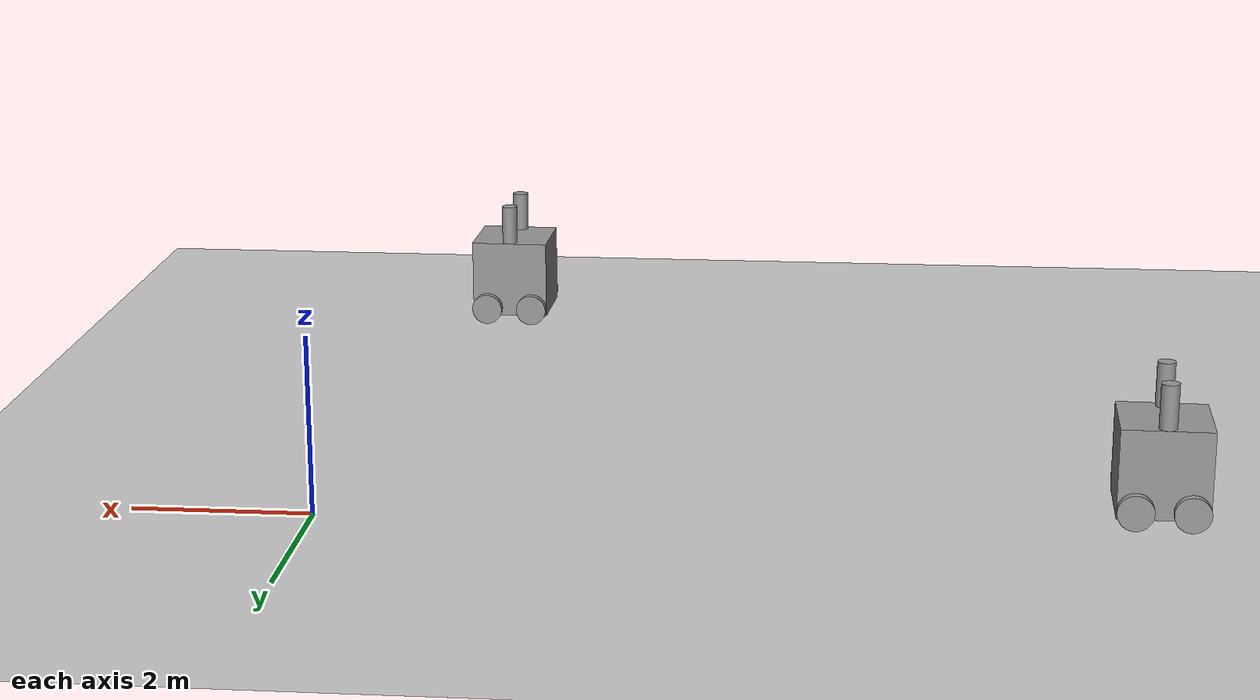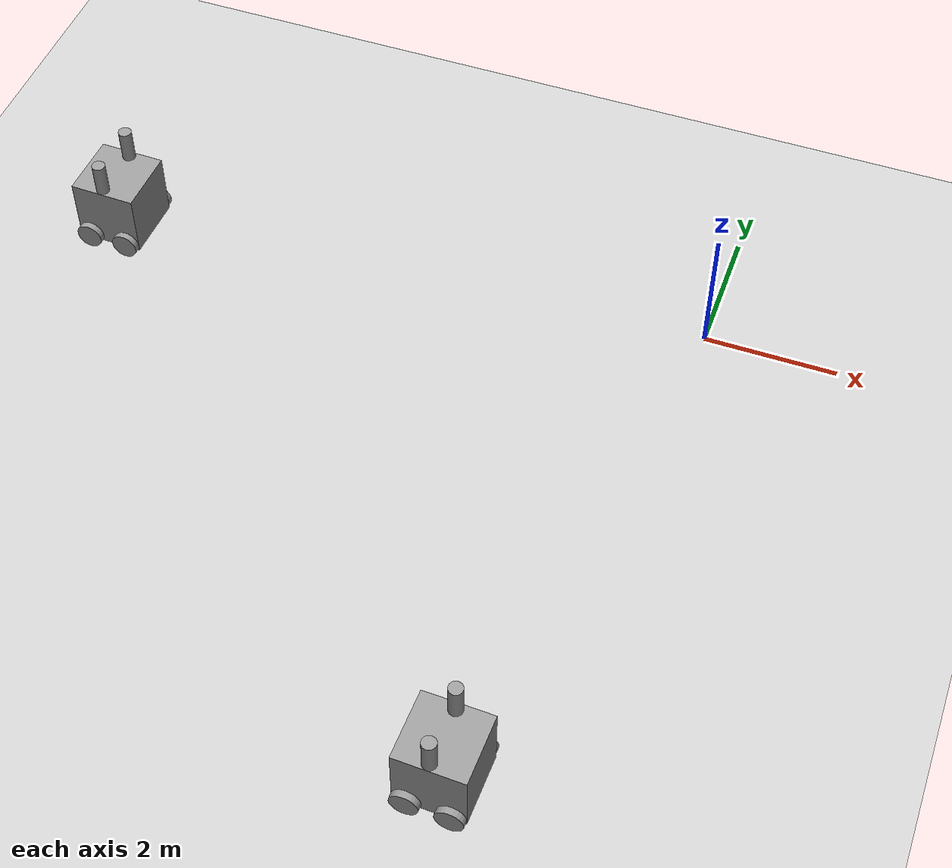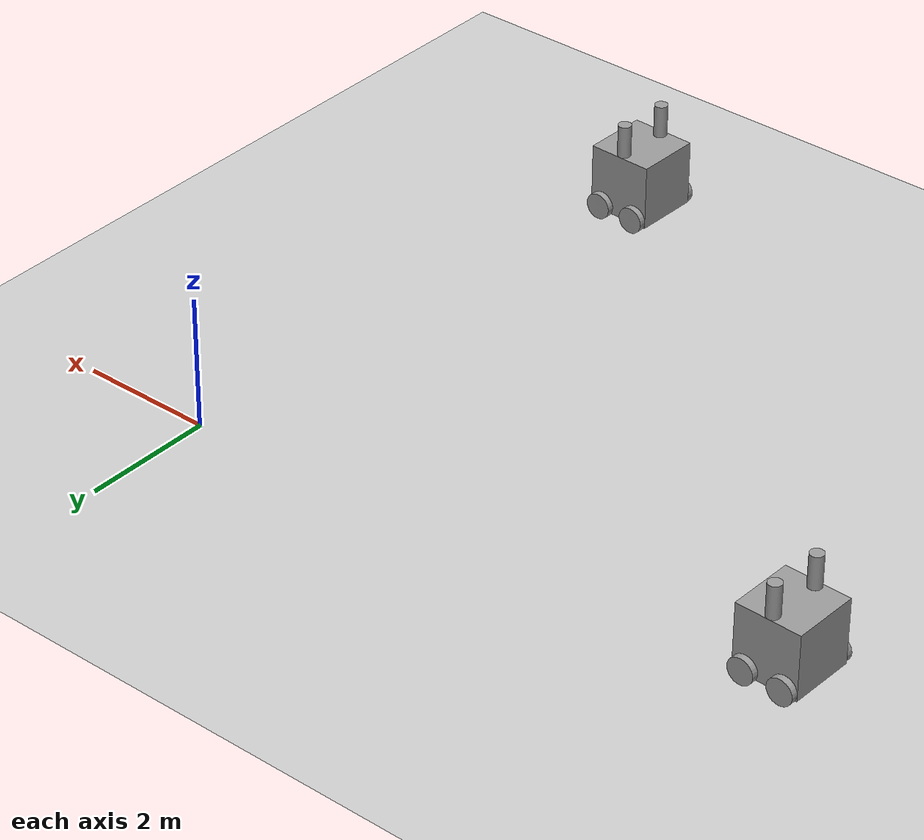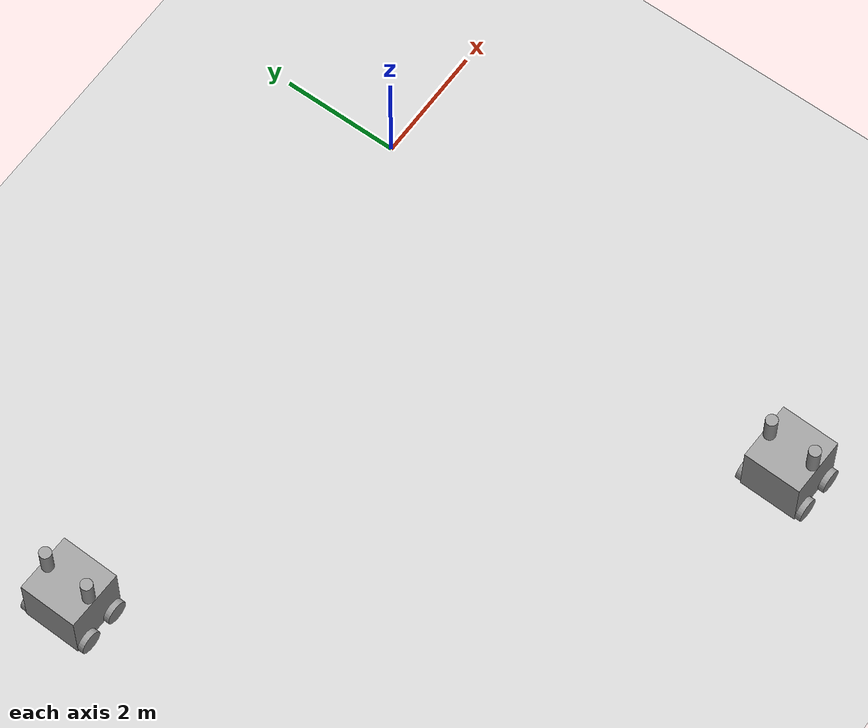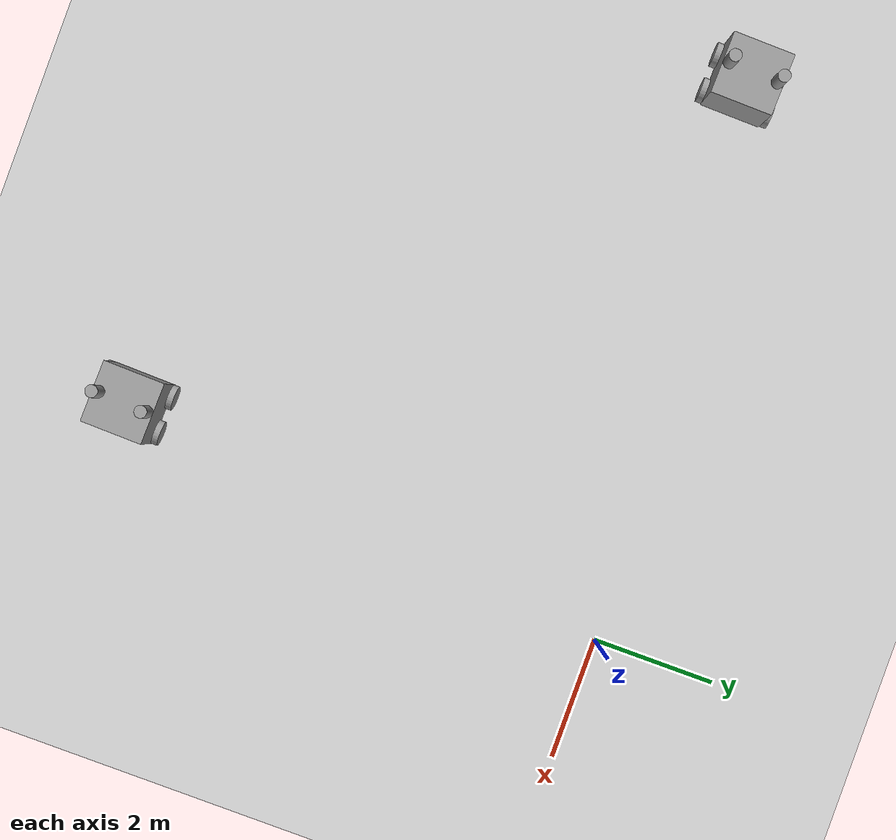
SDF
<sdf version="1.6">
 <world name="default">
  <model name="ground_plane">
   <static>1</static>
   <link name="link">
    <collision name="collision">
     <geometry><plane><normal>0 0 1</normal><size>100 100</size></plane></geometry>
     <surface><friction><ode><mu>100</mu><mu2>50</mu2></ode></friction></surface>
    </collision>
    <visual name="visual">
     <cast_shadows>0</cast_shadows>
     <geometry><plane><normal>0 0 1</normal><size>100 100</size></plane></geometry>
     <material>
      <script><uri>file://media/materials/scripts/gazebo.material</uri><name>Gazebo/Grey</name></script>
     </material>
    </visual>
   </link>
  </model>
  <model name="GyandeepsRobot_clone_0">
   <link name="link_0">
    <pose>-0.088094 0.807279 0.3325 0 -0 0</pose>
    <inertial>
     <mass>1</mass>
     <inertia>
      <ixx>0.166667</ixx>
      <ixy>0</ixy>
      <ixz>0</ixz>
      <iyy>0.166667</iyy>
      <iyz>0</iyz>
      <izz>0.166667</izz>
     </inertia>
    </inertial>
    <visual name="visual">
     <geometry><box><size>1 1 1</size></box></geometry>
     <material>
      <lighting>1</lighting>
      <script><uri>file://media/materials/scripts/gazebo.material</uri><name>Gazebo/Grey</name></script>
      <shader type="pixel"><normal_map>__default__</normal_map></shader>
      <ambient>0.3 0.3 0.3 1</ambient>
      <diffuse>0.7 0.7 0.7 1</diffuse>
      <specular>0.01 0.01 0.01 1</specular>
      <emissive>0 0 0 1</emissive>
     </material>
    </visual>
    <collision name="collision">
     <geometry><box><size>1 1 1</size></box></geometry>
     <surface>
      <friction>
       <ode><mu>1</mu><mu2>1</mu2><fdir1>0 0 0</fdir1><slip1>0</slip1><slip2>0</slip2></ode>
       <torsional>
        <coefficient>1</coefficient>
        <patch_radius>0</patch_radius>
        <surface_radius>0</surface_radius>
        <use_patch_radius>1</use_patch_radius>
        <ode><slip>0</slip></ode>
       </torsional>
      </friction>
      <bounce><restitution_coefficient>0</restitution_coefficient><threshold>1e+06</threshold></bounce>
      <contact>
       <collide_without_contact>0</collide_without_contact>
       <collide_without_contact_bitmask>1</collide_without_contact_bitmask>
       <collide_bitmask>1</collide_bitmask>
       <ode>
        <soft_cfm>0</soft_cfm>
        <soft_erp>0.2</soft_erp>
        <kp>1e+13</kp>
        <kd>1</kd>
        <max_vel>0.01</max_vel>
        <min_depth>0</min_depth>
       </ode>
       <bullet>
        <split_impulse>1</split_impulse>
        <split_impulse_penetration_threshold>-0.01</split_impulse_penetration_threshold>
        <soft_cfm>0</soft_cfm>
        <soft_erp>0.2</soft_erp>
        <kp>1e+13</kp>
        <kd>1</kd>
       </bullet>
      </contact>
     </surface>
    </collision>
   </link>
   <link name="link_1">
    <pose>-0.388094 0.257278 -0.0675 1.5708 -0 0</pose>
    <inertial>
     <mass>1</mass>
     <inertia><ixx>0.145833</ixx><ixy>0</ixy><ixz>0</ixz><iyy>0.145833</iyy><iyz>0</iyz><izz>0.125</izz></inertia>
    </inertial>
    <visual name="visual">
     <geometry><cylinder><radius>0.2</radius><length>0.1</length></cylinder></geometry>
     <material>
      <lighting>1</lighting>
      <script><uri>file://media/materials/scripts/gazebo.material</uri><name>Gazebo/Grey</name></script>
      <shader type="pixel"><normal_map>__default__</normal_map></shader>
      <ambient>0.3 0.3 0.3 1</ambient>
      <diffuse>0.7 0.7 0.7 1</diffuse>
      <specular>0.01 0.01 0.01 1</specular>
      <emissive>0 0 0 1</emissive>
     </material>
    </visual>
    <collision name="collision">
     <geometry><cylinder><radius>0.2</radius><length>0.1</length></cylinder></geometry>
     <surface>
      <friction>
       <ode><mu>1</mu><mu2>1</mu2><fdir1>0 0 0</fdir1><slip1>0</slip1><slip2>0</slip2></ode>
       <torsional>
        <coefficient>1</coefficient>
        <patch_radius>0</patch_radius>
        <surface_radius>0</surface_radius>
        <use_patch_radius>1</use_patch_radius>
        <ode><slip>0</slip></ode>
       </torsional>
      </friction>
      <bounce><restitution_coefficient>0</restitution_coefficient><threshold>1e+06</threshold></bounce>
      <contact>
       <collide_without_contact>0</collide_without_contact>
       <collide_without_contact_bitmask>1</collide_without_contact_bitmask>
       <collide_bitmask>1</collide_bitmask>
       <ode>
        <soft_cfm>0</soft_cfm>
        <soft_erp>0.2</soft_erp>
        <kp>1e+13</kp>
        <kd>1</kd>
        <max_vel>0.01</max_vel>
        <min_depth>0</min_depth>
       </ode>
       <bullet>
        <split_impulse>1</split_impulse>
        <split_impulse_penetration_threshold>-0.01</split_impulse_penetration_threshold>
        <soft_cfm>0</soft_cfm>
        <soft_erp>0.2</soft_erp>
        <kp>1e+13</kp>
        <kd>1</kd>
       </bullet>
      </contact>
     </surface>
    </collision>
   </link>
   <link name="link_1_clone">
    <pose>0.211906 0.257278 -0.0675 1.5708 -0 0</pose>
    <inertial>
     <mass>1</mass>
     <inertia><ixx>0.145833</ixx><ixy>0</ixy><ixz>0</ixz><iyy>0.145833</iyy><iyz>0</iyz><izz>0.125</izz></inertia>
    </inertial>
    <visual name="visual">
     <geometry><cylinder><radius>0.2</radius><length>0.1</length></cylinder></geometry>
     <material>
      <lighting>1</lighting>
      <script><uri>file://media/materials/scripts/gazebo.material</uri><name>Gazebo/Grey</name></script>
      <shader type="pixel"><normal_map>__default__</normal_map></shader>
      <ambient>0.3 0.3 0.3 1</ambient>
      <diffuse>0.7 0.7 0.7 1</diffuse>
      <specular>0.01 0.01 0.01 1</specular>
      <emissive>0 0 0 1</emissive>
     </material>
    </visual>
    <collision name="collision">
     <geometry><cylinder><radius>0.2</radius><length>0.1</length></cylinder></geometry>
     <surface>
      <friction>
       <ode><mu>1</mu><mu2>1</mu2><fdir1>0 0 0</fdir1><slip1>0</slip1><slip2>0</slip2></ode>
       <torsional>
        <coefficient>1</coefficient>
        <patch_radius>0</patch_radius>
        <surface_radius>0</surface_radius>
        <use_patch_radius>1</use_patch_radius>
        <ode><slip>0</slip></ode>
       </torsional>
      </friction>
      <bounce><restitution_coefficient>0</restitution_coefficient><threshold>1e+06</threshold></bounce>
      <contact>
       <collide_without_contact>0</collide_without_contact>
       <collide_without_contact_bitmask>1</collide_without_contact_bitmask>
       <collide_bitmask>1</collide_bitmask>
       <ode>
        <soft_cfm>0</soft_cfm>
        <soft_erp>0.2</soft_erp>
        <kp>1e+13</kp>
        <kd>1</kd>
        <max_vel>0.01</max_vel>
        <min_depth>0</min_depth>
       </ode>
       <bullet>
        <split_impulse>1</split_impulse>
        <split_impulse_penetration_threshold>-0.01</split_impulse_penetration_threshold>
        <soft_cfm>0</soft_cfm>
        <soft_erp>0.2</soft_erp>
        <kp>1e+13</kp>
        <kd>1</kd>
       </bullet>
      </contact>
     </surface>
    </collision>
   </link>
   <link name="link_1_clone_0">
    <pose>-0.388094 1.35728 -0.0675 1.5708 -0 0</pose>
    <inertial>
     <mass>1</mass>
     <inertia><ixx>0.145833</ixx><ixy>0</ixy><ixz>0</ixz><iyy>0.145833</iyy><iyz>0</iyz><izz>0.125</izz></inertia>
    </inertial>
    <visual name="visual">
     <geometry><cylinder><radius>0.2</radius><length>0.1</length></cylinder></geometry>
     <material>
      <lighting>1</lighting>
      <script><uri>file://media/materials/scripts/gazebo.material</uri><name>Gazebo/Grey</name></script>
      <shader type="pixel"><normal_map>__default__</normal_map></shader>
      <ambient>0.3 0.3 0.3 1</ambient>
      <diffuse>0.7 0.7 0.7 1</diffuse>
      <specular>0.01 0.01 0.01 1</specular>
      <emissive>0 0 0 1</emissive>
     </material>
    </visual>
    <collision name="collision">
     <geometry><cylinder><radius>0.2</radius><length>0.1</length></cylinder></geometry>
     <surface>
      <friction>
       <ode><mu>1</mu><mu2>1</mu2><fdir1>0 0 0</fdir1><slip1>0</slip1><slip2>0</slip2></ode>
       <torsional>
        <coefficient>1</coefficient>
        <patch_radius>0</patch_radius>
        <surface_radius>0</surface_radius>
        <use_patch_radius>1</use_patch_radius>
        <ode><slip>0</slip></ode>
       </torsional>
      </friction>
      <bounce><restitution_coefficient>0</restitution_coefficient><threshold>1e+06</threshold></bounce>
      <contact>
       <collide_without_contact>0</collide_without_contact>
       <collide_without_contact_bitmask>1</collide_without_contact_bitmask>
       <collide_bitmask>1</collide_bitmask>
       <ode>
        <soft_cfm>0</soft_cfm>
        <soft_erp>0.2</soft_erp>
        <kp>1e+13</kp>
        <kd>1</kd>
        <max_vel>0.01</max_vel>
        <min_depth>0</min_depth>
       </ode>
       <bullet>
        <split_impulse>1</split_impulse>
        <split_impulse_penetration_threshold>-0.01</split_impulse_penetration_threshold>
        <soft_cfm>0</soft_cfm>
        <soft_erp>0.2</soft_erp>
        <kp>1e+13</kp>
        <kd>1</kd>
       </bullet>
      </contact>
     </surface>
    </collision>
   </link>
   <link name="link_1_clone_1">
    <pose>0.211906 1.35728 -0.0675 1.5708 -0 0</pose>
    <inertial>
     <mass>1</mass>
     <inertia><ixx>0.145833</ixx><ixy>0</ixy><ixz>0</ixz><iyy>0.145833</iyy><iyz>0</iyz><izz>0.125</izz></inertia>
    </inertial>
    <visual name="visual">
     <geometry><cylinder><radius>0.2</radius><length>0.1</length></cylinder></geometry>
     <material>
      <lighting>1</lighting>
      <script><uri>file://media/materials/scripts/gazebo.material</uri><name>Gazebo/Grey</name></script>
      <shader type="pixel"><normal_map>__default__</normal_map></shader>
      <ambient>0.3 0.3 0.3 1</ambient>
      <diffuse>0.7 0.7 0.7 1</diffuse>
      <specular>0.01 0.01 0.01 1</specular>
      <emissive>0 0 0 1</emissive>
     </material>
    </visual>
    <collision name="collision">
     <geometry><cylinder><radius>0.2</radius><length>0.1</length></cylinder></geometry>
     <surface>
      <friction>
       <ode><mu>1</mu><mu2>1</mu2><fdir1>0 0 0</fdir1><slip1>0</slip1><slip2>0</slip2></ode>
       <torsional>
        <coefficient>1</coefficient>
        <patch_radius>0</patch_radius>
        <surface_radius>0</surface_radius>
        <use_patch_radius>1</use_patch_radius>
        <ode><slip>0</slip></ode>
       </torsional>
      </friction>
      <bounce><restitution_coefficient>0</restitution_coefficient><threshold>1e+06</threshold></bounce>
      <contact>
       <collide_without_contact>0</collide_without_contact>
       <collide_without_contact_bitmask>1</collide_without_contact_bitmask>
       <collide_bitmask>1</collide_bitmask>
       <ode>
        <soft_cfm>0</soft_cfm>
        <soft_erp>0.2</soft_erp>
        <kp>1e+13</kp>
        <kd>1</kd>
        <max_vel>0.01</max_vel>
        <min_depth>0</min_depth>
       </ode>
       <bullet>
        <split_impulse>1</split_impulse>
        <split_impulse_penetration_threshold>-0.01</split_impulse_penetration_threshold>
        <soft_cfm>0</soft_cfm>
        <soft_erp>0.2</soft_erp>
        <kp>1e+13</kp>
        <kd>1</kd>
       </bullet>
      </contact>
     </surface>
    </collision>
   </link>
   <link name="link_4">
    <pose>-0.108094 0.407279 1.0825 0 -0 0</pose>
    <inertial>
     <mass>1</mass>
     <inertia><ixx>0.145833</ixx><ixy>0</ixy><ixz>0</ixz><iyy>0.145833</iyy><iyz>0</iyz><izz>0.125</izz></inertia>
    </inertial>
    <visual name="visual">
     <geometry><cylinder><radius>0.1</radius><length>0.5</length></cylinder></geometry>
     <material>
      <lighting>1</lighting>
      <script><uri>file://media/materials/scripts/gazebo.material</uri><name>Gazebo/Grey</name></script>
      <shader type="pixel"><normal_map>__default__</normal_map></shader>
      <ambient>0.3 0.3 0.3 1</ambient>
      <diffuse>0.7 0.7 0.7 1</diffuse>
      <specular>0.01 0.01 0.01 1</specular>
      <emissive>0 0 0 1</emissive>
     </material>
    </visual>
    <collision name="collision">
     <geometry><cylinder><radius>0.1</radius><length>0.5</length></cylinder></geometry>
     <surface>
      <friction>
       <ode><mu>1</mu><mu2>1</mu2><fdir1>0 0 0</fdir1><slip1>0</slip1><slip2>0</slip2></ode>
       <torsional>
        <coefficient>1</coefficient>
        <patch_radius>0</patch_radius>
        <surface_radius>0</surface_radius>
        <use_patch_radius>1</use_patch_radius>
        <ode><slip>0</slip></ode>
       </torsional>
      </friction>
      <bounce><restitution_coefficient>0</restitution_coefficient><threshold>1e+06</threshold></bounce>
      <contact>
       <collide_without_contact>0</collide_without_contact>
       <collide_without_contact_bitmask>1</collide_without_contact_bitmask>
       <collide_bitmask>1</collide_bitmask>
       <ode>
        <soft_cfm>0</soft_cfm>
        <soft_erp>0.2</soft_erp>
        <kp>1e+13</kp>
        <kd>1</kd>
        <max_vel>0.01</max_vel>
        <min_depth>0</min_depth>
       </ode>
       <bullet>
        <split_impulse>1</split_impulse>
        <split_impulse_penetration_threshold>-0.01</split_impulse_penetration_threshold>
        <soft_cfm>0</soft_cfm>
        <soft_erp>0.2</soft_erp>
        <kp>1e+13</kp>
        <kd>1</kd>
       </bullet>
      </contact>
     </surface>
    </collision>
   </link>
   <link name="link_4_clone">
    <pose>-0.088094 1.20728 1.0825 0 -0 0</pose>
    <inertial>
     <mass>1</mass>
     <inertia><ixx>0.145833</ixx><ixy>0</ixy><ixz>0</ixz><iyy>0.145833</iyy><iyz>0</iyz><izz>0.125</izz></inertia>
    </inertial>
    <visual name="visual">
     <geometry><cylinder><radius>0.1</radius><length>0.5</length></cylinder></geometry>
     <material>
      <lighting>1</lighting>
      <script><uri>file://media/materials/scripts/gazebo.material</uri><name>Gazebo/Grey</name></script>
      <shader type="pixel"><normal_map>__default__</normal_map></shader>
      <ambient>0.3 0.3 0.3 1</ambient>
      <diffuse>0.7 0.7 0.7 1</diffuse>
      <specular>0.01 0.01 0.01 1</specular>
      <emissive>0 0 0 1</emissive>
     </material>
    </visual>
    <collision name="collision">
     <geometry><cylinder><radius>0.1</radius><length>0.5</length></cylinder></geometry>
     <surface>
      <friction>
       <ode><mu>1</mu><mu2>1</mu2><fdir1>0 0 0</fdir1><slip1>0</slip1><slip2>0</slip2></ode>
       <torsional>
        <coefficient>1</coefficient>
        <patch_radius>0</patch_radius>
        <surface_radius>0</surface_radius>
        <use_patch_radius>1</use_patch_radius>
        <ode><slip>0</slip></ode>
       </torsional>
      </friction>
      <bounce><restitution_coefficient>0</restitution_coefficient><threshold>1e+06</threshold></bounce>
      <contact>
       <collide_without_contact>0</collide_without_contact>
       <collide_without_contact_bitmask>1</collide_without_contact_bitmask>
       <collide_bitmask>1</collide_bitmask>
       <ode>
        <soft_cfm>0</soft_cfm>
        <soft_erp>0.2</soft_erp>
        <kp>1e+13</kp>
        <kd>1</kd>
        <max_vel>0.01</max_vel>
        <min_depth>0</min_depth>
       </ode>
       <bullet>
        <split_impulse>1</split_impulse>
        <split_impulse_penetration_threshold>-0.01</split_impulse_penetration_threshold>
        <soft_cfm>0</soft_cfm>
        <soft_erp>0.2</soft_erp>
        <kp>1e+13</kp>
        <kd>1</kd>
       </bullet>
      </contact>
     </surface>
    </collision>
   </link>
   <joint name="link_0_JOINT_0" type="revolute">
    <parent>link_0</parent>
    <child>link_1</child>
    <axis>
     <xyz>0 0 1</xyz>
     <use_parent_model_frame>0</use_parent_model_frame>
     <limit>
      <lower>-1.79769e+308</lower>
      <upper>1.79769e+308</upper>
      <effort>-1</effort>
      <velocity>-1</velocity>
     </limit>
     <dynamics>
      <spring_reference>0</spring_reference>
      <spring_stiffness>0</spring_stiffness>
      <damping>0</damping>
      <friction>0</friction>
     </dynamics>
    </axis>
    <physics>
     <ode><limit><cfm>0</cfm><erp>0.2</erp></limit><suspension><cfm>0</cfm><erp>0.2</erp></suspension></ode>
    </physics>
   </joint>
   <joint name="link_0_JOINT_1" type="revolute">
    <parent>link_0</parent>
    <child>link_1_clone</child>
    <axis>
     <xyz>0 0 1</xyz>
     <use_parent_model_frame>0</use_parent_model_frame>
     <limit>
      <lower>-1.79769e+308</lower>
      <upper>1.79769e+308</upper>
      <effort>-1</effort>
      <velocity>-1</velocity>
     </limit>
     <dynamics>
      <spring_reference>0</spring_reference>
      <spring_stiffness>0</spring_stiffness>
      <damping>0</damping>
      <friction>0</friction>
     </dynamics>
    </axis>
    <physics>
     <ode><limit><cfm>0</cfm><erp>0.2</erp></limit><suspension><cfm>0</cfm><erp>0.2</erp></suspension></ode>
    </physics>
   </joint>
   <joint name="link_0_JOINT_2" type="revolute">
    <parent>link_0</parent>
    <child>link_1_clone_0</child>
    <axis>
     <xyz>0 0 1</xyz>
     <use_parent_model_frame>0</use_parent_model_frame>
     <limit>
      <lower>-1.79769e+308</lower>
      <upper>1.79769e+308</upper>
      <effort>-1</effort>
      <velocity>-1</velocity>
     </limit>
     <dynamics>
      <spring_reference>0</spring_reference>
      <spring_stiffness>0</spring_stiffness>
      <damping>0</damping>
      <friction>0</friction>
     </dynamics>
    </axis>
    <physics>
     <ode><limit><cfm>0</cfm><erp>0.2</erp></limit><suspension><cfm>0</cfm><erp>0.2</erp></suspension></ode>
    </physics>
   </joint>
   <joint name="link_0_JOINT_3" type="revolute">
    <parent>link_0</parent>
    <child>link_1_clone_1</child>
    <axis>
     <xyz>0 0 1</xyz>
     <use_parent_model_frame>0</use_parent_model_frame>
     <limit>
      <lower>-1.79769e+308</lower>
      <upper>1.79769e+308</upper>
      <effort>-1</effort>
      <velocity>-1</velocity>
     </limit>
     <dynamics>
      <spring_reference>0</spring_reference>
      <spring_stiffness>0</spring_stiffness>
      <damping>0</damping>
     </dynamics>
    </axis>
    <physics>
     <ode><limit><cfm>0</cfm><erp>0.2</erp></limit><suspension><cfm>0</cfm><erp>0.2</erp></suspension></ode>
    </physics>
   </joint>
   <joint name="link_0_JOINT_4" type="prismatic">
    <parent>link_0</parent>
    <child>link_4</child>
    <axis>
     <xyz>0 0 1</xyz>
     <use_parent_model_frame>0</use_parent_model_frame>
     <limit>
      <lower>-1.79769e+308</lower>
      <upper>1.79769e+308</upper>
      <effort>-1</effort>
      <velocity>-1</velocity>
     </limit>
     <dynamics>
      <spring_reference>0</spring_reference>
      <spring_stiffness>0</spring_stiffness>
      <damping>0</damping>
     </dynamics>
    </axis>
    <physics>
     <ode><limit><cfm>0</cfm><erp>0.2</erp></limit><suspension><cfm>0</cfm><erp>0.2</erp></suspension></ode>
    </physics>
   </joint>
   <joint name="link_0_JOINT_5" type="prismatic">
    <parent>link_0</parent>
    <child>link_4_clone</child>
    <axis>
     <xyz>0 0 1</xyz>
     <use_parent_model_frame>0</use_parent_model_frame>
     <limit>
      <lower>-1.79769e+308</lower>
      <upper>1.79769e+308</upper>
      <effort>-1</effort>
      <velocity>-1</velocity>
     </limit>
     <dynamics>
      <spring_reference>0</spring_reference>
      <spring_stiffness>0</spring_stiffness>
      <damping>0</damping>
     </dynamics>
    </axis>
    <physics>
     <ode><limit><cfm>0</cfm><erp>0.2</erp></limit><suspension><cfm>0</cfm><erp>0.2</erp></suspension></ode>
    </physics>
   </joint>
   <static>0</static>
   <pose>-9.04283 -1.62933 0.267498 2e-06 0 -0.025498</pose>
  </model>
  <model name="GyandeepsRobot_clone_0_clone">
   <link name="link_0">
    <pose>-0.088094 0.807279 0.3325 0 -0 0</pose>
    <inertial>
     <mass>1</mass>
     <inertia>
      <ixx>0.166667</ixx>
      <ixy>0</ixy>
      <ixz>0</ixz>
      <iyy>0.166667</iyy>
      <iyz>0</iyz>
      <izz>0.166667</izz>
     </inertia>
    </inertial>
    <visual name="visual">
     <geometry><box><size>1 1 1</size></box></geometry>
     <material>
      <lighting>1</lighting>
      <script><uri>file://media/materials/scripts/gazebo.material</uri><name>Gazebo/Grey</name></script>
      <shader type="pixel"><normal_map>__default__</normal_map></shader>
      <ambient>0.3 0.3 0.3 1</ambient>
      <diffuse>0.7 0.7 0.7 1</diffuse>
      <specular>0.01 0.01 0.01 1</specular>
      <emissive>0 0 0 1</emissive>
     </material>
    </visual>
    <collision name="collision">
     <geometry><box><size>1 1 1</size></box></geometry>
     <surface>
      <friction>
       <ode><mu>1</mu><mu2>1</mu2><fdir1>0 0 0</fdir1><slip1>0</slip1><slip2>0</slip2></ode>
       <torsional>
        <coefficient>1</coefficient>
        <patch_radius>0</patch_radius>
        <surface_radius>0</surface_radius>
        <use_patch_radius>1</use_patch_radius>
        <ode><slip>0</slip></ode>
       </torsional>
      </friction>
      <bounce><restitution_coefficient>0</restitution_coefficient><threshold>1e+06</threshold></bounce>
      <contact>
       <collide_without_contact>0</collide_without_contact>
       <collide_without_contact_bitmask>1</collide_without_contact_bitmask>
       <collide_bitmask>1</collide_bitmask>
       <ode>
        <soft_cfm>0</soft_cfm>
        <soft_erp>0.2</soft_erp>
        <kp>1e+13</kp>
        <kd>1</kd>
        <max_vel>0.01</max_vel>
        <min_depth>0</min_depth>
       </ode>
       <bullet>
        <split_impulse>1</split_impulse>
        <split_impulse_penetration_threshold>-0.01</split_impulse_penetration_threshold>
        <soft_cfm>0</soft_cfm>
        <soft_erp>0.2</soft_erp>
        <kp>1e+13</kp>
        <kd>1</kd>
       </bullet>
      </contact>
     </surface>
    </collision>
   </link>
   <link name="link_1">
    <pose>-0.388094 0.257278 -0.0675 1.5708 -0 0</pose>
    <inertial>
     <mass>1</mass>
     <inertia><ixx>0.145833</ixx><ixy>0</ixy><ixz>0</ixz><iyy>0.145833</iyy><iyz>0</iyz><izz>0.125</izz></inertia>
    </inertial>
    <visual name="visual">
     <geometry><cylinder><radius>0.2</radius><length>0.1</length></cylinder></geometry>
     <material>
      <lighting>1</lighting>
      <script><uri>file://media/materials/scripts/gazebo.material</uri><name>Gazebo/Grey</name></script>
      <shader type="pixel"><normal_map>__default__</normal_map></shader>
      <ambient>0.3 0.3 0.3 1</ambient>
      <diffuse>0.7 0.7 0.7 1</diffuse>
      <specular>0.01 0.01 0.01 1</specular>
      <emissive>0 0 0 1</emissive>
     </material>
    </visual>
    <collision name="collision">
     <geometry><cylinder><radius>0.2</radius><length>0.1</length></cylinder></geometry>
     <surface>
      <friction>
       <ode><mu>1</mu><mu2>1</mu2><fdir1>0 0 0</fdir1><slip1>0</slip1><slip2>0</slip2></ode>
       <torsional>
        <coefficient>1</coefficient>
        <patch_radius>0</patch_radius>
        <surface_radius>0</surface_radius>
        <use_patch_radius>1</use_patch_radius>
        <ode><slip>0</slip></ode>
       </torsional>
      </friction>
      <bounce><restitution_coefficient>0</restitution_coefficient><threshold>1e+06</threshold></bounce>
      <contact>
       <collide_without_contact>0</collide_without_contact>
       <collide_without_contact_bitmask>1</collide_without_contact_bitmask>
       <collide_bitmask>1</collide_bitmask>
       <ode>
        <soft_cfm>0</soft_cfm>
        <soft_erp>0.2</soft_erp>
        <kp>1e+13</kp>
        <kd>1</kd>
        <max_vel>0.01</max_vel>
        <min_depth>0</min_depth>
       </ode>
       <bullet>
        <split_impulse>1</split_impulse>
        <split_impulse_penetration_threshold>-0.01</split_impulse_penetration_threshold>
        <soft_cfm>0</soft_cfm>
        <soft_erp>0.2</soft_erp>
        <kp>1e+13</kp>
        <kd>1</kd>
       </bullet>
      </contact>
     </surface>
    </collision>
   </link>
   <link name="link_1_clone">
    <pose>0.211906 0.257278 -0.0675 1.5708 -0 0</pose>
    <inertial>
     <mass>1</mass>
     <inertia><ixx>0.145833</ixx><ixy>0</ixy><ixz>0</ixz><iyy>0.145833</iyy><iyz>0</iyz><izz>0.125</izz></inertia>
    </inertial>
    <visual name="visual">
     <geometry><cylinder><radius>0.2</radius><length>0.1</length></cylinder></geometry>
     <material>
      <lighting>1</lighting>
      <script><uri>file://media/materials/scripts/gazebo.material</uri><name>Gazebo/Grey</name></script>
      <shader type="pixel"><normal_map>__default__</normal_map></shader>
      <ambient>0.3 0.3 0.3 1</ambient>
      <diffuse>0.7 0.7 0.7 1</diffuse>
      <specular>0.01 0.01 0.01 1</specular>
      <emissive>0 0 0 1</emissive>
     </material>
    </visual>
    <collision name="collision">
     <geometry><cylinder><radius>0.2</radius><length>0.1</length></cylinder></geometry>
     <surface>
      <friction>
       <ode><mu>1</mu><mu2>1</mu2><fdir1>0 0 0</fdir1><slip1>0</slip1><slip2>0</slip2></ode>
       <torsional>
        <coefficient>1</coefficient>
        <patch_radius>0</patch_radius>
        <surface_radius>0</surface_radius>
        <use_patch_radius>1</use_patch_radius>
        <ode><slip>0</slip></ode>
       </torsional>
      </friction>
      <bounce><restitution_coefficient>0</restitution_coefficient><threshold>1e+06</threshold></bounce>
      <contact>
       <collide_without_contact>0</collide_without_contact>
       <collide_without_contact_bitmask>1</collide_without_contact_bitmask>
       <collide_bitmask>1</collide_bitmask>
       <ode>
        <soft_cfm>0</soft_cfm>
        <soft_erp>0.2</soft_erp>
        <kp>1e+13</kp>
        <kd>1</kd>
        <max_vel>0.01</max_vel>
        <min_depth>0</min_depth>
       </ode>
       <bullet>
        <split_impulse>1</split_impulse>
        <split_impulse_penetration_threshold>-0.01</split_impulse_penetration_threshold>
        <soft_cfm>0</soft_cfm>
        <soft_erp>0.2</soft_erp>
        <kp>1e+13</kp>
        <kd>1</kd>
       </bullet>
      </contact>
     </surface>
    </collision>
   </link>
   <link name="link_1_clone_0">
    <pose>-0.388094 1.35728 -0.0675 1.5708 -0 0</pose>
    <inertial>
     <mass>1</mass>
     <inertia><ixx>0.145833</ixx><ixy>0</ixy><ixz>0</ixz><iyy>0.145833</iyy><iyz>0</iyz><izz>0.125</izz></inertia>
    </inertial>
    <visual name="visual">
     <geometry><cylinder><radius>0.2</radius><length>0.1</length></cylinder></geometry>
     <material>
      <lighting>1</lighting>
      <script><uri>file://media/materials/scripts/gazebo.material</uri><name>Gazebo/Grey</name></script>
      <shader type="pixel"><normal_map>__default__</normal_map></shader>
      <ambient>0.3 0.3 0.3 1</ambient>
      <diffuse>0.7 0.7 0.7 1</diffuse>
      <specular>0.01 0.01 0.01 1</specular>
      <emissive>0 0 0 1</emissive>
     </material>
    </visual>
    <collision name="collision">
     <geometry><cylinder><radius>0.2</radius><length>0.1</length></cylinder></geometry>
     <surface>
      <friction>
       <ode><mu>1</mu><mu2>1</mu2><fdir1>0 0 0</fdir1><slip1>0</slip1><slip2>0</slip2></ode>
       <torsional>
        <coefficient>1</coefficient>
        <patch_radius>0</patch_radius>
        <surface_radius>0</surface_radius>
        <use_patch_radius>1</use_patch_radius>
        <ode><slip>0</slip></ode>
       </torsional>
      </friction>
      <bounce><restitution_coefficient>0</restitution_coefficient><threshold>1e+06</threshold></bounce>
      <contact>
       <collide_without_contact>0</collide_without_contact>
       <collide_without_contact_bitmask>1</collide_without_contact_bitmask>
       <collide_bitmask>1</collide_bitmask>
       <ode>
        <soft_cfm>0</soft_cfm>
        <soft_erp>0.2</soft_erp>
        <kp>1e+13</kp>
        <kd>1</kd>
        <max_vel>0.01</max_vel>
        <min_depth>0</min_depth>
       </ode>
       <bullet>
        <split_impulse>1</split_impulse>
        <split_impulse_penetration_threshold>-0.01</split_impulse_penetration_threshold>
        <soft_cfm>0</soft_cfm>
        <soft_erp>0.2</soft_erp>
        <kp>1e+13</kp>
        <kd>1</kd>
       </bullet>
      </contact>
     </surface>
    </collision>
   </link>
   <link name="link_1_clone_1">
    <pose>0.211906 1.35728 -0.0675 1.5708 -0 0</pose>
    <inertial>
     <mass>1</mass>
     <inertia><ixx>0.145833</ixx><ixy>0</ixy><ixz>0</ixz><iyy>0.145833</iyy><iyz>0</iyz><izz>0.125</izz></inertia>
    </inertial>
    <visual name="visual">
     <geometry><cylinder><radius>0.2</radius><length>0.1</length></cylinder></geometry>
     <material>
      <lighting>1</lighting>
      <script><uri>file://media/materials/scripts/gazebo.material</uri><name>Gazebo/Grey</name></script>
      <shader type="pixel"><normal_map>__default__</normal_map></shader>
      <ambient>0.3 0.3 0.3 1</ambient>
      <diffuse>0.7 0.7 0.7 1</diffuse>
      <specular>0.01 0.01 0.01 1</specular>
      <emissive>0 0 0 1</emissive>
     </material>
    </visual>
    <collision name="collision">
     <geometry><cylinder><radius>0.2</radius><length>0.1</length></cylinder></geometry>
     <surface>
      <friction>
       <ode><mu>1</mu><mu2>1</mu2><fdir1>0 0 0</fdir1><slip1>0</slip1><slip2>0</slip2></ode>
       <torsional>
        <coefficient>1</coefficient>
        <patch_radius>0</patch_radius>
        <surface_radius>0</surface_radius>
        <use_patch_radius>1</use_patch_radius>
        <ode><slip>0</slip></ode>
       </torsional>
      </friction>
      <bounce><restitution_coefficient>0</restitution_coefficient><threshold>1e+06</threshold></bounce>
      <contact>
       <collide_without_contact>0</collide_without_contact>
       <collide_without_contact_bitmask>1</collide_without_contact_bitmask>
       <collide_bitmask>1</collide_bitmask>
       <ode>
        <soft_cfm>0</soft_cfm>
        <soft_erp>0.2</soft_erp>
        <kp>1e+13</kp>
        <kd>1</kd>
        <max_vel>0.01</max_vel>
        <min_depth>0</min_depth>
       </ode>
       <bullet>
        <split_impulse>1</split_impulse>
        <split_impulse_penetration_threshold>-0.01</split_impulse_penetration_threshold>
        <soft_cfm>0</soft_cfm>
        <soft_erp>0.2</soft_erp>
        <kp>1e+13</kp>
        <kd>1</kd>
       </bullet>
      </contact>
     </surface>
    </collision>
   </link>
   <link name="link_4">
    <pose>-0.108094 0.407279 1.0825 0 -0 0</pose>
    <inertial>
     <mass>1</mass>
     <inertia><ixx>0.145833</ixx><ixy>0</ixy><ixz>0</ixz><iyy>0.145833</iyy><iyz>0</iyz><izz>0.125</izz></inertia>
    </inertial>
    <visual name="visual">
     <geometry><cylinder><radius>0.1</radius><length>0.5</length></cylinder></geometry>
     <material>
      <lighting>1</lighting>
      <script><uri>file://media/materials/scripts/gazebo.material</uri><name>Gazebo/Grey</name></script>
      <shader type="pixel"><normal_map>__default__</normal_map></shader>
      <ambient>0.3 0.3 0.3 1</ambient>
      <diffuse>0.7 0.7 0.7 1</diffuse>
      <specular>0.01 0.01 0.01 1</specular>
      <emissive>0 0 0 1</emissive>
     </material>
    </visual>
    <collision name="collision">
     <geometry><cylinder><radius>0.1</radius><length>0.5</length></cylinder></geometry>
     <surface>
      <friction>
       <ode><mu>1</mu><mu2>1</mu2><fdir1>0 0 0</fdir1><slip1>0</slip1><slip2>0</slip2></ode>
       <torsional>
        <coefficient>1</coefficient>
        <patch_radius>0</patch_radius>
        <surface_radius>0</surface_radius>
        <use_patch_radius>1</use_patch_radius>
        <ode><slip>0</slip></ode>
       </torsional>
      </friction>
      <bounce><restitution_coefficient>0</restitution_coefficient><threshold>1e+06</threshold></bounce>
      <contact>
       <collide_without_contact>0</collide_without_contact>
       <collide_without_contact_bitmask>1</collide_without_contact_bitmask>
       <collide_bitmask>1</collide_bitmask>
       <ode>
        <soft_cfm>0</soft_cfm>
        <soft_erp>0.2</soft_erp>
        <kp>1e+13</kp>
        <kd>1</kd>
        <max_vel>0.01</max_vel>
        <min_depth>0</min_depth>
       </ode>
       <bullet>
        <split_impulse>1</split_impulse>
        <split_impulse_penetration_threshold>-0.01</split_impulse_penetration_threshold>
        <soft_cfm>0</soft_cfm>
        <soft_erp>0.2</soft_erp>
        <kp>1e+13</kp>
        <kd>1</kd>
       </bullet>
      </contact>
     </surface>
    </collision>
   </link>
   <link name="link_4_clone">
    <pose>-0.088094 1.20728 1.0825 0 -0 0</pose>
    <inertial>
     <mass>1</mass>
     <inertia><ixx>0.145833</ixx><ixy>0</ixy><ixz>0</ixz><iyy>0.145833</iyy><iyz>0</iyz><izz>0.125</izz></inertia>
    </inertial>
    <visual name="visual">
     <geometry><cylinder><radius>0.1</radius><length>0.5</length></cylinder></geometry>
     <material>
      <lighting>1</lighting>
      <script><uri>file://media/materials/scripts/gazebo.material</uri><name>Gazebo/Grey</name></script>
      <shader type="pixel"><normal_map>__default__</normal_map></shader>
      <ambient>0.3 0.3 0.3 1</ambient>
      <diffuse>0.7 0.7 0.7 1</diffuse>
      <specular>0.01 0.01 0.01 1</specular>
      <emissive>0 0 0 1</emissive>
     </material>
    </visual>
    <collision name="collision">
     <geometry><cylinder><radius>0.1</radius><length>0.5</length></cylinder></geometry>
     <surface>
      <friction>
       <ode><mu>1</mu><mu2>1</mu2><fdir1>0 0 0</fdir1><slip1>0</slip1><slip2>0</slip2></ode>
       <torsional>
        <coefficient>1</coefficient>
        <patch_radius>0</patch_radius>
        <surface_radius>0</surface_radius>
        <use_patch_radius>1</use_patch_radius>
        <ode><slip>0</slip></ode>
       </torsional>
      </friction>
      <bounce><restitution_coefficient>0</restitution_coefficient><threshold>1e+06</threshold></bounce>
      <contact>
       <collide_without_contact>0</collide_without_contact>
       <collide_without_contact_bitmask>1</collide_without_contact_bitmask>
       <collide_bitmask>1</collide_bitmask>
       <ode>
        <soft_cfm>0</soft_cfm>
        <soft_erp>0.2</soft_erp>
        <kp>1e+13</kp>
        <kd>1</kd>
        <max_vel>0.01</max_vel>
        <min_depth>0</min_depth>
       </ode>
       <bullet>
        <split_impulse>1</split_impulse>
        <split_impulse_penetration_threshold>-0.01</split_impulse_penetration_threshold>
        <soft_cfm>0</soft_cfm>
        <soft_erp>0.2</soft_erp>
        <kp>1e+13</kp>
        <kd>1</kd>
       </bullet>
      </contact>
     </surface>
    </collision>
   </link>
   <joint name="link_0_JOINT_0" type="revolute">
    <parent>link_0</parent>
    <child>link_1</child>
    <axis>
     <xyz>0 0 1</xyz>
     <use_parent_model_frame>0</use_parent_model_frame>
     <limit>
      <lower>-1.79769e+308</lower>
      <upper>1.79769e+308</upper>
      <effort>-1</effort>
      <velocity>-1</velocity>
     </limit>
     <dynamics>
      <spring_reference>0</spring_reference>
      <spring_stiffness>0</spring_stiffness>
      <damping>0</damping>
      <friction>0</friction>
     </dynamics>
    </axis>
    <physics>
     <ode><limit><cfm>0</cfm><erp>0.2</erp></limit><suspension><cfm>0</cfm><erp>0.2</erp></suspension></ode>
    </physics>
   </joint>
   <joint name="link_0_JOINT_1" type="revolute">
    <parent>link_0</parent>
    <child>link_1_clone</child>
    <axis>
     <xyz>0 0 1</xyz>
     <use_parent_model_frame>0</use_parent_model_frame>
     <limit>
      <lower>-1.79769e+308</lower>
      <upper>1.79769e+308</upper>
      <effort>-1</effort>
      <velocity>-1</velocity>
     </limit>
     <dynamics>
      <spring_reference>0</spring_reference>
      <spring_stiffness>0</spring_stiffness>
      <damping>0</damping>
      <friction>0</friction>
     </dynamics>
    </axis>
    <physics>
     <ode><limit><cfm>0</cfm><erp>0.2</erp></limit><suspension><cfm>0</cfm><erp>0.2</erp></suspension></ode>
    </physics>
   </joint>
   <joint name="link_0_JOINT_2" type="revolute">
    <parent>link_0</parent>
    <child>link_1_clone_0</child>
    <axis>
     <xyz>0 0 1</xyz>
     <use_parent_model_frame>0</use_parent_model_frame>
     <limit>
      <lower>-1.79769e+308</lower>
      <upper>1.79769e+308</upper>
      <effort>-1</effort>
      <velocity>-1</velocity>
     </limit>
     <dynamics>
      <spring_reference>0</spring_reference>
      <spring_stiffness>0</spring_stiffness>
      <damping>0</damping>
      <friction>0</friction>
     </dynamics>
    </axis>
    <physics>
     <ode><limit><cfm>0</cfm><erp>0.2</erp></limit><suspension><cfm>0</cfm><erp>0.2</erp></suspension></ode>
    </physics>
   </joint>
   <joint name="link_0_JOINT_3" type="revolute">
    <parent>link_0</parent>
    <child>link_1_clone_1</child>
    <axis>
     <xyz>0 0 1</xyz>
     <use_parent_model_frame>0</use_parent_model_frame>
     <limit>
      <lower>-1.79769e+308</lower>
      <upper>1.79769e+308</upper>
      <effort>-1</effort>
      <velocity>-1</velocity>
     </limit>
     <dynamics>
      <spring_reference>0</spring_reference>
      <spring_stiffness>0</spring_stiffness>
      <damping>0</damping>
     </dynamics>
    </axis>
    <physics>
     <ode><limit><cfm>0</cfm><erp>0.2</erp></limit><suspension><cfm>0</cfm><erp>0.2</erp></suspension></ode>
    </physics>
   </joint>
   <joint name="link_0_JOINT_4" type="prismatic">
    <parent>link_0</parent>
    <child>link_4</child>
    <axis>
     <xyz>0 0 1</xyz>
     <use_parent_model_frame>0</use_parent_model_frame>
     <limit>
      <lower>-1.79769e+308</lower>
      <upper>1.79769e+308</upper>
      <effort>-1</effort>
      <velocity>-1</velocity>
     </limit>
     <dynamics>
      <spring_reference>0</spring_reference>
      <spring_stiffness>0</spring_stiffness>
      <damping>0</damping>
     </dynamics>
    </axis>
    <physics>
     <ode><limit><cfm>0</cfm><erp>0.2</erp></limit><suspension><cfm>0</cfm><erp>0.2</erp></suspension></ode>
    </physics>
   </joint>
   <joint name="link_0_JOINT_5" type="prismatic">
    <parent>link_0</parent>
    <child>link_4_clone</child>
    <axis>
     <xyz>0 0 1</xyz>
     <use_parent_model_frame>0</use_parent_model_frame>
     <limit>
      <lower>-1.79769e+308</lower>
      <upper>1.79769e+308</upper>
      <effort>-1</effort>
      <velocity>-1</velocity>
     </limit>
     <dynamics>
      <spring_reference>0</spring_reference>
      <spring_stiffness>0</spring_stiffness>
      <damping>0</damping>
     </dynamics>
    </axis>
    <physics>
     <ode><limit><cfm>0</cfm><erp>0.2</erp></limit><suspension><cfm>0</cfm><erp>0.2</erp></suspension></ode>
    </physics>
   </joint>
   <static>0</static>
   <pose>-1.00178 -9.01625 0.267501 -2e-06 -0 -0.025498</pose>
  </model>
 </world>
</sdf>
